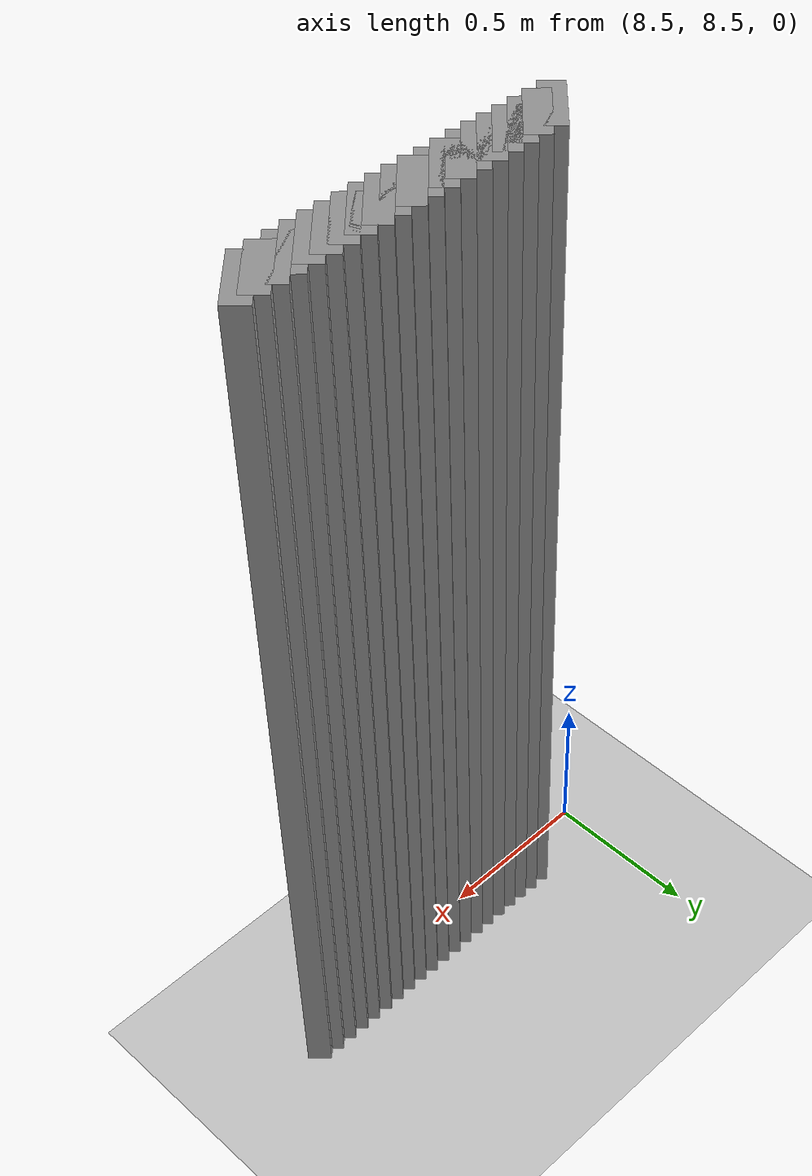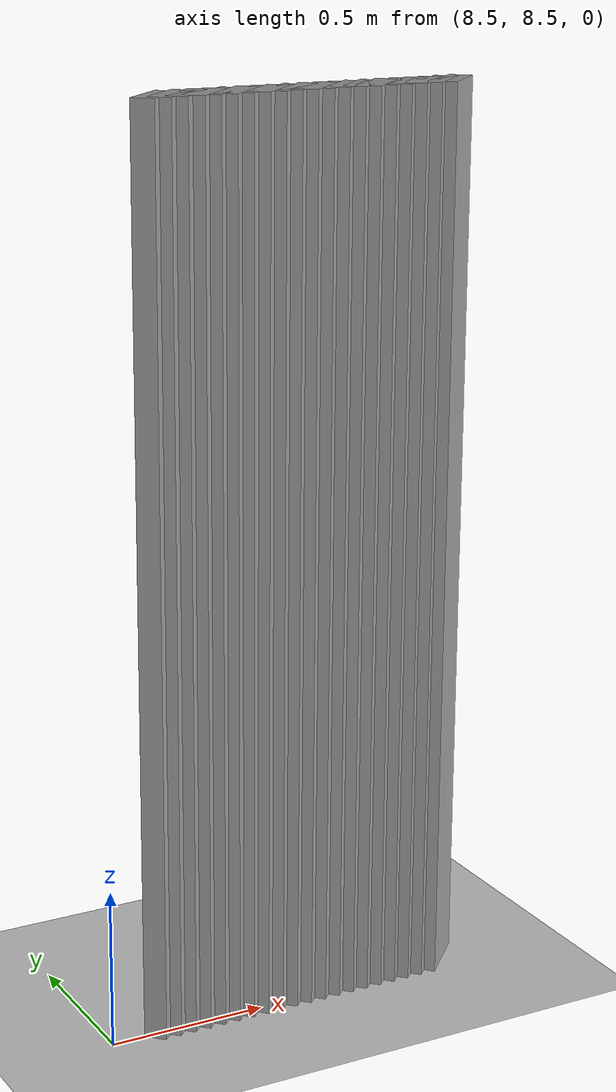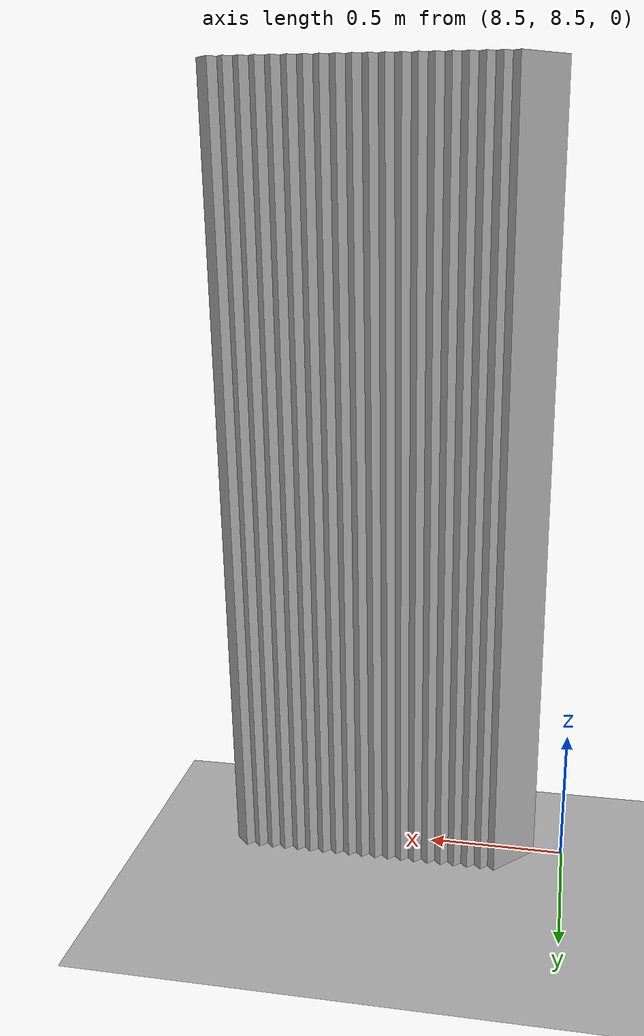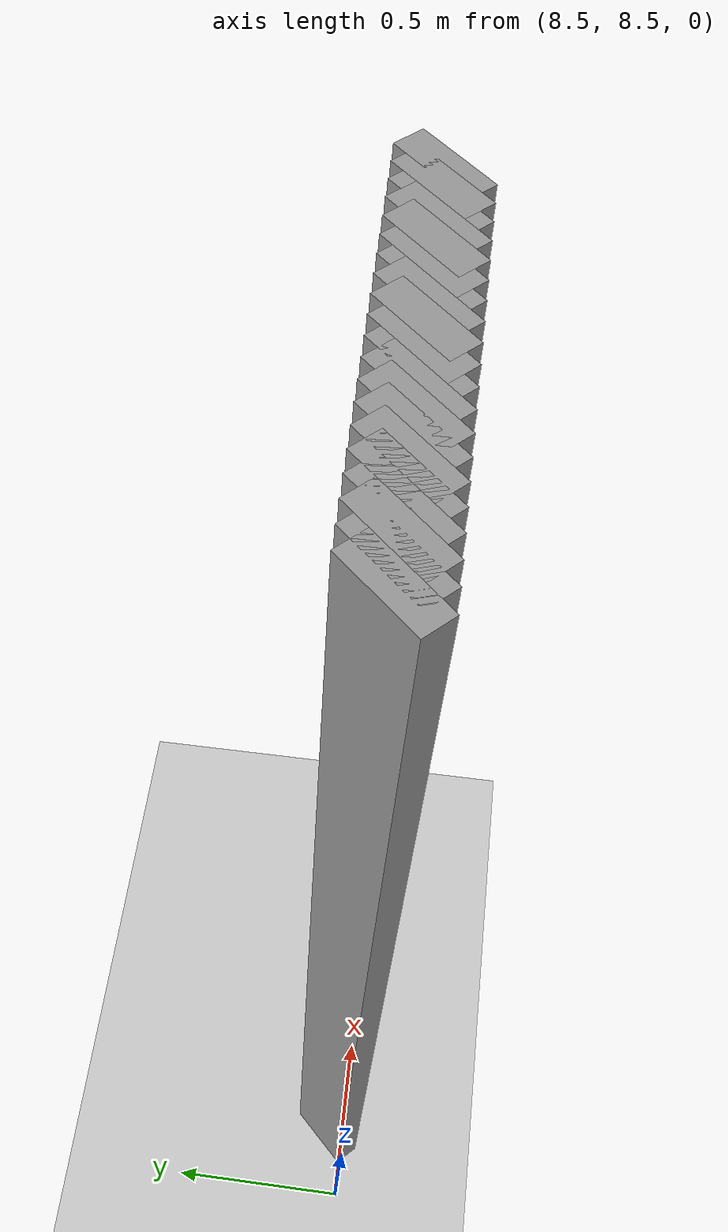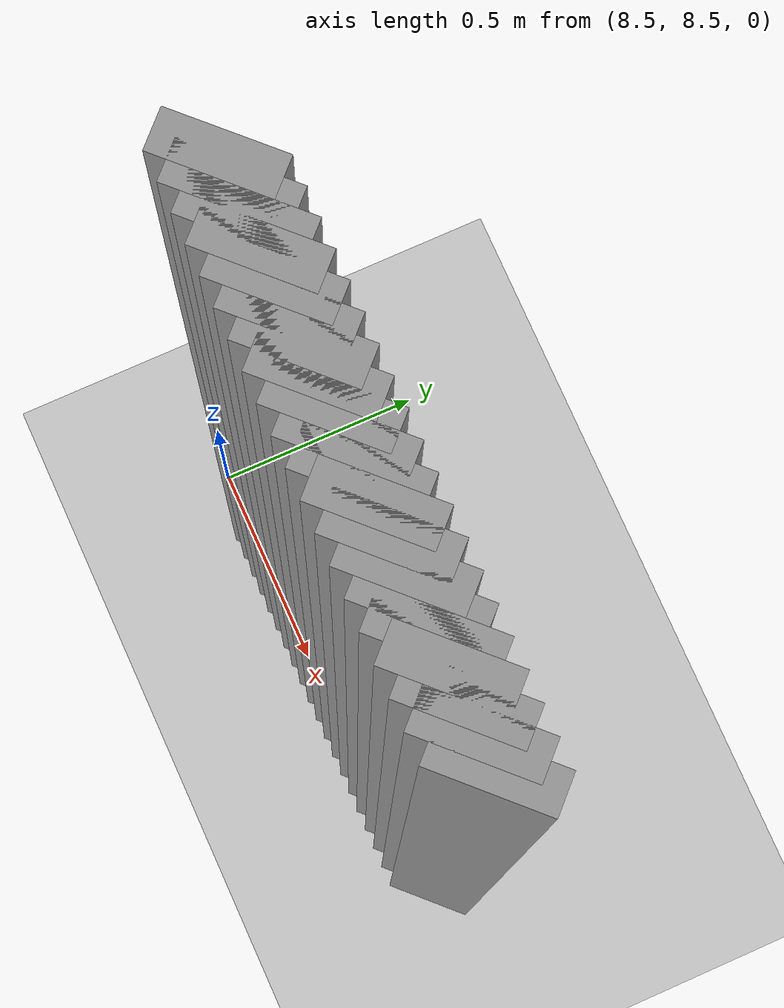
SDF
<sdf version="1.5">
 <world name="default">
  <include><uri>model://ground_plane</uri></include>
  <include><uri>model://sun</uri></include>
  <model name="grey_wall_3880">
   <static>1</static>
   <link name="link">
    <pose>8.7 8.55  1.4 0 0 -0.785398163397</pose>
    <collision name="collision"><geometry><box><size>0.0707106781187 .2  2.8</size></box></geometry></collision>
    <visual name="visual">
     <cast_shadows>0</cast_shadows>
     <geometry><box><size>0.0707106781187 .2  2.8</size></box></geometry>
     <material>
      <script>
       <uri>model://grey_wall/materials/scripts</uri>
       <uri>model://grey_wall/materials/textures</uri>
       <name>vrc/grey_wall</name>
      </script>
     </material>
    </visual>
   </link>
  </model>
  <model name="grey_wall_3881">
   <static>1</static>
   <link name="link">
    <pose>8.75 8.55  1.4 0 0 -0.785398163397</pose>
    <collision name="collision"><geometry><box><size>0.0707106781187 .2  2.8</size></box></geometry></collision>
    <visual name="visual">
     <cast_shadows>0</cast_shadows>
     <geometry><box><size>0.0707106781187 .2  2.8</size></box></geometry>
     <material>
      <script>
       <uri>model://grey_wall/materials/scripts</uri>
       <uri>model://grey_wall/materials/textures</uri>
       <name>vrc/grey_wall</name>
      </script>
     </material>
    </visual>
   </link>
  </model>
  <model name="grey_wall_3882">
   <static>1</static>
   <link name="link">
    <pose>8.8 8.55  1.4 0 0 -0.785398163397</pose>
    <collision name="collision"><geometry><box><size>0.0707106781187 .2  2.8</size></box></geometry></collision>
    <visual name="visual">
     <cast_shadows>0</cast_shadows>
     <geometry><box><size>0.0707106781187 .2  2.8</size></box></geometry>
     <material>
      <script>
       <uri>model://grey_wall/materials/scripts</uri>
       <uri>model://grey_wall/materials/textures</uri>
       <name>vrc/grey_wall</name>
      </script>
     </material>
    </visual>
   </link>
  </model>
  <model name="grey_wall_3883">
   <static>1</static>
   <link name="link">
    <pose>8.85 8.55  1.4 0 0 -0.785398163397</pose>
    <collision name="collision"><geometry><box><size>0.0707106781187 .2  2.8</size></box></geometry></collision>
    <visual name="visual">
     <cast_shadows>0</cast_shadows>
     <geometry><box><size>0.0707106781187 .2  2.8</size></box></geometry>
     <material>
      <script>
       <uri>model://grey_wall/materials/scripts</uri>
       <uri>model://grey_wall/materials/textures</uri>
       <name>vrc/grey_wall</name>
      </script>
     </material>
    </visual>
   </link>
  </model>
  <model name="grey_wall_3884">
   <static>1</static>
   <link name="link">
    <pose>8.9 8.55  1.4 0 0 -0.785398163397</pose>
    <collision name="collision"><geometry><box><size>0.0707106781187 .2  2.8</size></box></geometry></collision>
    <visual name="visual">
     <cast_shadows>0</cast_shadows>
     <geometry><box><size>0.0707106781187 .2  2.8</size></box></geometry>
     <material>
      <script>
       <uri>model://grey_wall/materials/scripts</uri>
       <uri>model://grey_wall/materials/textures</uri>
       <name>vrc/grey_wall</name>
      </script>
     </material>
    </visual>
   </link>
  </model>
  <model name="grey_wall_3885">
   <static>1</static>
   <link name="link">
    <pose>8.95 8.55  1.4 0 0 -0.785398163397</pose>
    <collision name="collision"><geometry><box><size>0.0707106781187 .2  2.8</size></box></geometry></collision>
    <visual name="visual">
     <cast_shadows>0</cast_shadows>
     <geometry><box><size>0.0707106781187 .2  2.8</size></box></geometry>
     <material>
      <script>
       <uri>model://grey_wall/materials/scripts</uri>
       <uri>model://grey_wall/materials/textures</uri>
       <name>vrc/grey_wall</name>
      </script>
     </material>
    </visual>
   </link>
  </model>
  <model name="grey_wall_3886">
   <static>1</static>
   <link name="link">
    <pose>9.0 8.55  1.4 0 0 -0.785398163397</pose>
    <collision name="collision"><geometry><box><size>0.0707106781187 .2  2.8</size></box></geometry></collision>
    <visual name="visual">
     <cast_shadows>0</cast_shadows>
     <geometry><box><size>0.0707106781187 .2  2.8</size></box></geometry>
     <material>
      <script>
       <uri>model://grey_wall/materials/scripts</uri>
       <uri>model://grey_wall/materials/textures</uri>
       <name>vrc/grey_wall</name>
      </script>
     </material>
    </visual>
   </link>
  </model>
  <model name="grey_wall_3887">
   <static>1</static>
   <link name="link">
    <pose>9.05 8.55  1.4 0 0 -0.785398163397</pose>
    <collision name="collision"><geometry><box><size>0.0707106781187 .2  2.8</size></box></geometry></collision>
    <visual name="visual">
     <cast_shadows>0</cast_shadows>
     <geometry><box><size>0.0707106781187 .2  2.8</size></box></geometry>
     <material>
      <script>
       <uri>model://grey_wall/materials/scripts</uri>
       <uri>model://grey_wall/materials/textures</uri>
       <name>vrc/grey_wall</name>
      </script>
     </material>
    </visual>
   </link>
  </model>
  <model name="grey_wall_3888">
   <static>1</static>
   <link name="link">
    <pose>9.1 8.55  1.4 0 0 -0.785398163397</pose>
    <collision name="collision"><geometry><box><size>0.0707106781187 .2  2.8</size></box></geometry></collision>
    <visual name="visual">
     <cast_shadows>0</cast_shadows>
     <geometry><box><size>0.0707106781187 .2  2.8</size></box></geometry>
     <material>
      <script>
       <uri>model://grey_wall/materials/scripts</uri>
       <uri>model://grey_wall/materials/textures</uri>
       <name>vrc/grey_wall</name>
      </script>
     </material>
    </visual>
   </link>
  </model>
  <model name="grey_wall_3889">
   <static>1</static>
   <link name="link">
    <pose>9.15 8.55  1.4 0 0 -0.785398163397</pose>
    <collision name="collision"><geometry><box><size>0.0707106781187 .2  2.8</size></box></geometry></collision>
    <visual name="visual">
     <cast_shadows>0</cast_shadows>
     <geometry><box><size>0.0707106781187 .2  2.8</size></box></geometry>
     <material>
      <script>
       <uri>model://grey_wall/materials/scripts</uri>
       <uri>model://grey_wall/materials/textures</uri>
       <name>vrc/grey_wall</name>
      </script>
     </material>
    </visual>
   </link>
  </model>
  <model name="grey_wall_3890">
   <static>1</static>
   <link name="link">
    <pose>9.2 8.55  1.4 0 0 -0.785398163397</pose>
    <collision name="collision"><geometry><box><size>0.0707106781187 .2  2.8</size></box></geometry></collision>
    <visual name="visual">
     <cast_shadows>0</cast_shadows>
     <geometry><box><size>0.0707106781187 .2  2.8</size></box></geometry>
     <material>
      <script>
       <uri>model://grey_wall/materials/scripts</uri>
       <uri>model://grey_wall/materials/textures</uri>
       <name>vrc/grey_wall</name>
      </script>
     </material>
    </visual>
   </link>
  </model>
  <model name="grey_wall_3891">
   <static>1</static>
   <link name="link">
    <pose>9.25 8.55  1.4 0 0 -0.785398163397</pose>
    <collision name="collision"><geometry><box><size>0.0707106781187 .2  2.8</size></box></geometry></collision>
    <visual name="visual">
     <cast_shadows>0</cast_shadows>
     <geometry><box><size>0.0707106781187 .2  2.8</size></box></geometry>
     <material>
      <script>
       <uri>model://grey_wall/materials/scripts</uri>
       <uri>model://grey_wall/materials/textures</uri>
       <name>vrc/grey_wall</name>
      </script>
     </material>
    </visual>
   </link>
  </model>
  <model name="grey_wall_3892">
   <static>1</static>
   <link name="link">
    <pose>9.3 8.55  1.4 0 0 -0.785398163397</pose>
    <collision name="collision"><geometry><box><size>0.0707106781187 .2  2.8</size></box></geometry></collision>
    <visual name="visual">
     <cast_shadows>0</cast_shadows>
     <geometry><box><size>0.0707106781187 .2  2.8</size></box></geometry>
     <material>
      <script>
       <uri>model://grey_wall/materials/scripts</uri>
       <uri>model://grey_wall/materials/textures</uri>
       <name>vrc/grey_wall</name>
      </script>
     </material>
    </visual>
   </link>
  </model>
  <model name="grey_wall_3893">
   <static>1</static>
   <link name="link">
    <pose>9.35 8.55  1.4 0 0 -0.785398163397</pose>
    <collision name="collision"><geometry><box><size>0.0707106781187 .2  2.8</size></box></geometry></collision>
    <visual name="visual">
     <cast_shadows>0</cast_shadows>
     <geometry><box><size>0.0707106781187 .2  2.8</size></box></geometry>
     <material>
      <script>
       <uri>model://grey_wall/materials/scripts</uri>
       <uri>model://grey_wall/materials/textures</uri>
       <name>vrc/grey_wall</name>
      </script>
     </material>
    </visual>
   </link>
  </model>
  <model name="grey_wall_3894">
   <static>1</static>
   <link name="link">
    <pose>9.4 8.55  1.4 0 0 -0.785398163397</pose>
    <collision name="collision"><geometry><box><size>0.0707106781187 .2  2.8</size></box></geometry></collision>
    <visual name="visual">
     <cast_shadows>0</cast_shadows>
     <geometry><box><size>0.0707106781187 .2  2.8</size></box></geometry>
     <material>
      <script>
       <uri>model://grey_wall/materials/scripts</uri>
       <uri>model://grey_wall/materials/textures</uri>
       <name>vrc/grey_wall</name>
      </script>
     </material>
    </visual>
   </link>
  </model>
  <model name="grey_wall_3895">
   <static>1</static>
   <link name="link">
    <pose>9.45 8.55  1.4 0 0 -0.785398163397</pose>
    <collision name="collision"><geometry><box><size>0.0707106781187 .2  2.8</size></box></geometry></collision>
    <visual name="visual">
     <cast_shadows>0</cast_shadows>
     <geometry><box><size>0.0707106781187 .2  2.8</size></box></geometry>
     <material>
      <script>
       <uri>model://grey_wall/materials/scripts</uri>
       <uri>model://grey_wall/materials/textures</uri>
       <name>vrc/grey_wall</name>
      </script>
     </material>
    </visual>
   </link>
  </model>
  <model name="grey_wall_3896">
   <static>1</static>
   <link name="link">
    <pose>9.5 8.55  1.4 0 0 -0.785398163397</pose>
    <collision name="collision"><geometry><box><size>0.0707106781187 .2  2.8</size></box></geometry></collision>
    <visual name="visual">
     <cast_shadows>0</cast_shadows>
     <geometry><box><size>0.0707106781187 .2  2.8</size></box></geometry>
     <material>
      <script>
       <uri>model://grey_wall/materials/scripts</uri>
       <uri>model://grey_wall/materials/textures</uri>
       <name>vrc/grey_wall</name>
      </script>
     </material>
    </visual>
   </link>
  </model>
  <model name="grey_wall_3897">
   <static>1</static>
   <link name="link">
    <pose>9.55 8.55  1.4 0 0 -0.785398163397</pose>
    <collision name="collision"><geometry><box><size>0.0707106781187 .2  2.8</size></box></geometry></collision>
    <visual name="visual">
     <cast_shadows>0</cast_shadows>
     <geometry><box><size>0.0707106781187 .2  2.8</size></box></geometry>
     <material>
      <script>
       <uri>model://grey_wall/materials/scripts</uri>
       <uri>model://grey_wall/materials/textures</uri>
       <name>vrc/grey_wall</name>
      </script>
     </material>
    </visual>
   </link>
  </model>
  <model name="grey_wall_3898">
   <static>1</static>
   <link name="link">
    <pose>9.6 8.55  1.4 0 0 -0.785398163397</pose>
    <collision name="collision"><geometry><box><size>0.0707106781187 .2  2.8</size></box></geometry></collision>
    <visual name="visual">
     <cast_shadows>0</cast_shadows>
     <geometry><box><size>0.0707106781187 .2  2.8</size></box></geometry>
     <material>
      <script>
       <uri>model://grey_wall/materials/scripts</uri>
       <uri>model://grey_wall/materials/textures</uri>
       <name>vrc/grey_wall</name>
      </script>
     </material>
    </visual>
   </link>
  </model>
  <model name="grey_wall_3899">
   <static>1</static>
   <link name="link">
    <pose>9.65 8.55  1.4 0 0 -0.785398163397</pose>
    <collision name="collision"><geometry><box><size>0.0707106781187 .2  2.8</size></box></geometry></collision>
    <visual name="visual">
     <cast_shadows>0</cast_shadows>
     <geometry><box><size>0.0707106781187 .2  2.8</size></box></geometry>
     <material>
      <script>
       <uri>model://grey_wall/materials/scripts</uri>
       <uri>model://grey_wall/materials/textures</uri>
       <name>vrc/grey_wall</name>
      </script>
     </material>
    </visual>
   </link>
  </model>
 </world>
</sdf>
